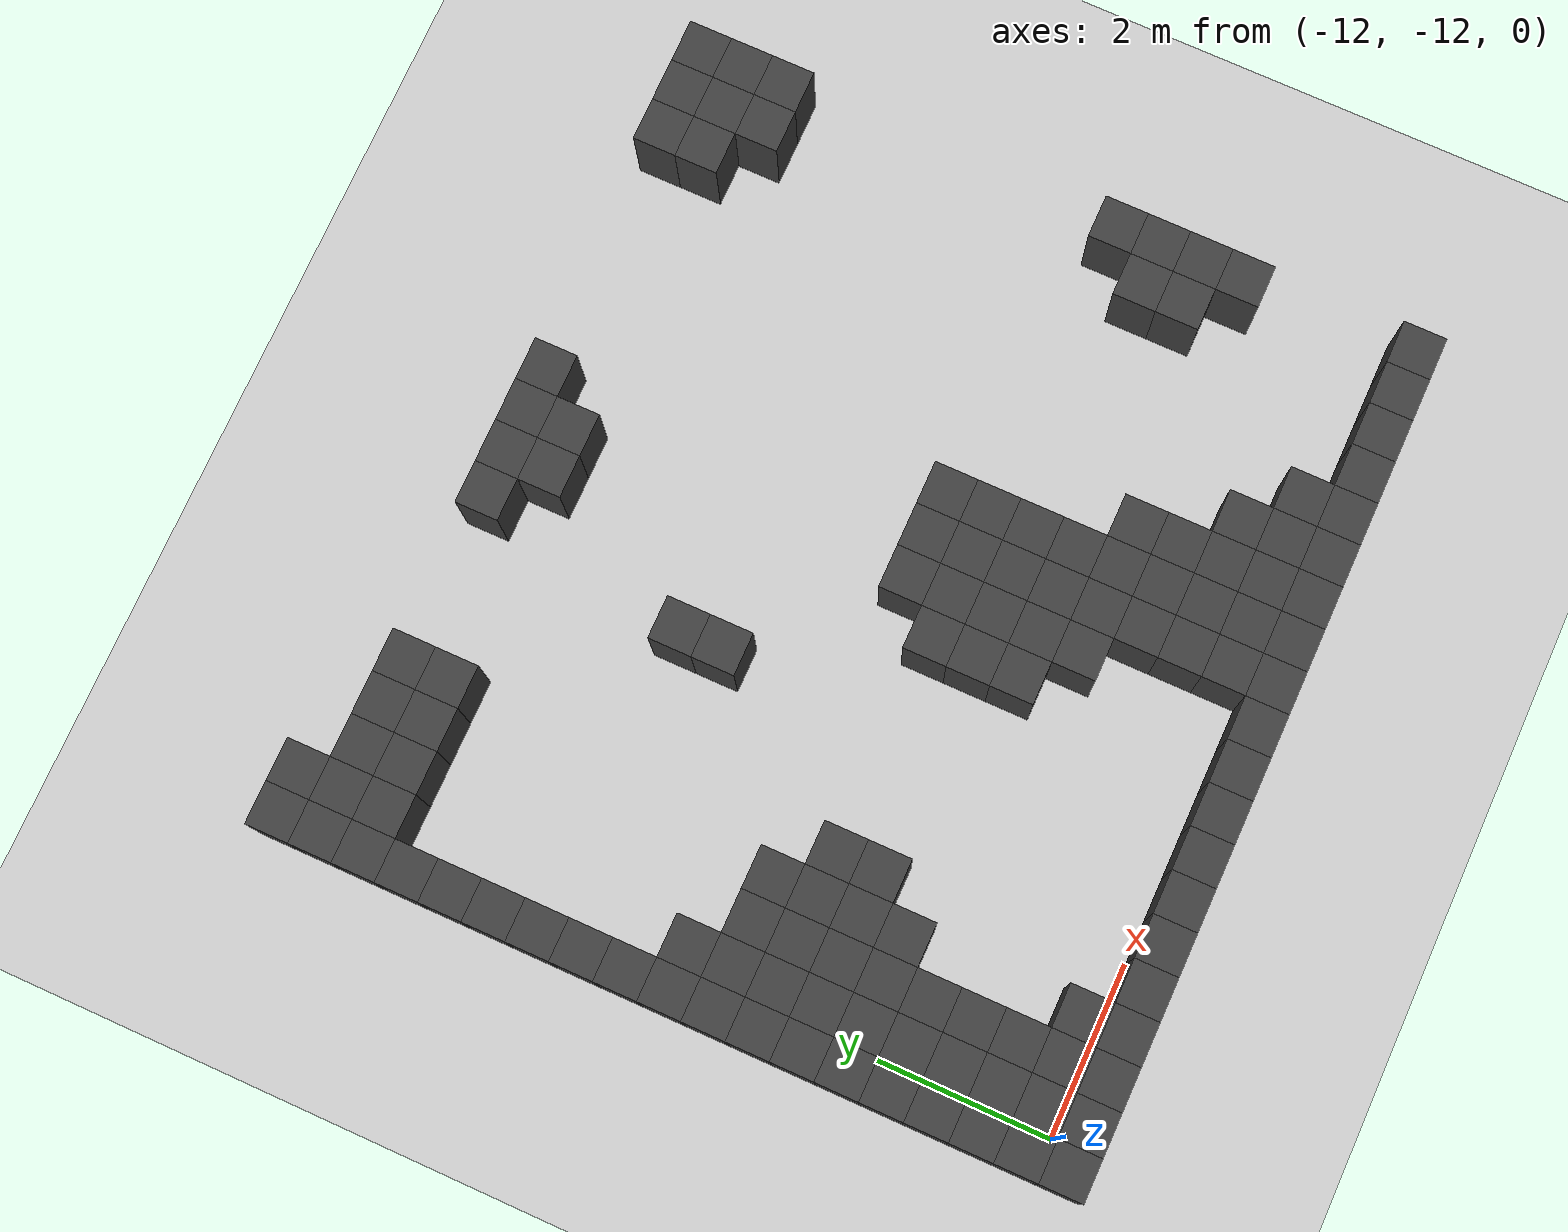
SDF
<sdf version="1.7">
 <world name="map_8382">
  <model name="ground_plane">
   <static>true</static>
   <link name="link">
    <collision name="collision">
     <geometry><plane><normal>0 0 1</normal><size>200 200</size></plane></geometry>
    </collision>
    <visual name="visual">
     <geometry><plane><normal>0 0 1</normal><size>200 200</size></plane></geometry>
     <material><ambient>0.8 0.8 0.8 1</ambient><diffuse>0.8 0.8 0.8 1</diffuse></material>
    </visual>
   </link>
  </model>
  <model name="maze_environment">
   <static>true</static>
   <link name="wall_510">
    <pose>-12.250 -3.250 0.500 0 0 0</pose>
    <collision name="col"><geometry><box><size>0.5 0.5 1.0</size></box></geometry></collision>
    <visual name="vis">
     <geometry><box><size>0.5 0.5 1.0</size></box></geometry>
     <material><ambient>0.15 0.15 0.15 1</ambient><diffuse>0.25 0.25 0.25 1</diffuse></material>
    </visual>
   </link>
   <link name="wall_511">
    <pose>-11.750 -3.250 0.500 0 0 0</pose>
    <collision name="col"><geometry><box><size>0.5 0.5 1.0</size></box></geometry></collision>
    <visual name="vis">
     <geometry><box><size>0.5 0.5 1.0</size></box></geometry>
     <material><ambient>0.15 0.15 0.15 1</ambient><diffuse>0.25 0.25 0.25 1</diffuse></material>
    </visual>
   </link>
   <link name="wall_533">
    <pose>-12.250 -3.750 0.500 0 0 0</pose>
    <collision name="col"><geometry><box><size>0.5 0.5 1.0</size></box></geometry></collision>
    <visual name="vis">
     <geometry><box><size>0.5 0.5 1.0</size></box></geometry>
     <material><ambient>0.15 0.15 0.15 1</ambient><diffuse>0.25 0.25 0.25 1</diffuse></material>
    </visual>
   </link>
   <link name="wall_534">
    <pose>-11.750 -3.750 0.500 0 0 0</pose>
    <collision name="col"><geometry><box><size>0.5 0.5 1.0</size></box></geometry></collision>
    <visual name="vis">
     <geometry><box><size>0.5 0.5 1.0</size></box></geometry>
     <material><ambient>0.15 0.15 0.15 1</ambient><diffuse>0.25 0.25 0.25 1</diffuse></material>
    </visual>
   </link>
   <link name="wall_535">
    <pose>-11.250 -3.750 0.500 0 0 0</pose>
    <collision name="col"><geometry><box><size>0.5 0.5 1.0</size></box></geometry></collision>
    <visual name="vis">
     <geometry><box><size>0.5 0.5 1.0</size></box></geometry>
     <material><ambient>0.15 0.15 0.15 1</ambient><diffuse>0.25 0.25 0.25 1</diffuse></material>
    </visual>
   </link>
   <link name="wall_536">
    <pose>-10.750 -3.750 0.500 0 0 0</pose>
    <collision name="col"><geometry><box><size>0.5 0.5 1.0</size></box></geometry></collision>
    <visual name="vis">
     <geometry><box><size>0.5 0.5 1.0</size></box></geometry>
     <material><ambient>0.15 0.15 0.15 1</ambient><diffuse>0.25 0.25 0.25 1</diffuse></material>
    </visual>
   </link>
   <link name="wall_537">
    <pose>-10.250 -3.750 0.500 0 0 0</pose>
    <collision name="col"><geometry><box><size>0.5 0.5 1.0</size></box></geometry></collision>
    <visual name="vis">
     <geometry><box><size>0.5 0.5 1.0</size></box></geometry>
     <material><ambient>0.15 0.15 0.15 1</ambient><diffuse>0.25 0.25 0.25 1</diffuse></material>
    </visual>
   </link>
   <link name="wall_538">
    <pose>-8.250 -3.750 0.500 0 0 0</pose>
    <collision name="col"><geometry><box><size>0.5 0.5 1.0</size></box></geometry></collision>
    <visual name="vis">
     <geometry><box><size>0.5 0.5 1.0</size></box></geometry>
     <material><ambient>0.15 0.15 0.15 1</ambient><diffuse>0.25 0.25 0.25 1</diffuse></material>
    </visual>
   </link>
   <link name="wall_539">
    <pose>-7.750 -3.750 0.500 0 0 0</pose>
    <collision name="col"><geometry><box><size>0.5 0.5 1.0</size></box></geometry></collision>
    <visual name="vis">
     <geometry><box><size>0.5 0.5 1.0</size></box></geometry>
     <material><ambient>0.15 0.15 0.15 1</ambient><diffuse>0.25 0.25 0.25 1</diffuse></material>
    </visual>
   </link>
   <link name="wall_540">
    <pose>-7.250 -3.750 0.500 0 0 0</pose>
    <collision name="col"><geometry><box><size>0.5 0.5 1.0</size></box></geometry></collision>
    <visual name="vis">
     <geometry><box><size>0.5 0.5 1.0</size></box></geometry>
     <material><ambient>0.15 0.15 0.15 1</ambient><diffuse>0.25 0.25 0.25 1</diffuse></material>
    </visual>
   </link>
   <link name="wall_541">
    <pose>-6.750 -3.750 0.500 0 0 0</pose>
    <collision name="col"><geometry><box><size>0.5 0.5 1.0</size></box></geometry></collision>
    <visual name="vis">
     <geometry><box><size>0.5 0.5 1.0</size></box></geometry>
     <material><ambient>0.15 0.15 0.15 1</ambient><diffuse>0.25 0.25 0.25 1</diffuse></material>
    </visual>
   </link>
   <link name="wall_542">
    <pose>-3.750 -3.750 0.500 0 0 0</pose>
    <collision name="col"><geometry><box><size>0.5 0.5 1.0</size></box></geometry></collision>
    <visual name="vis">
     <geometry><box><size>0.5 0.5 1.0</size></box></geometry>
     <material><ambient>0.15 0.15 0.15 1</ambient><diffuse>0.25 0.25 0.25 1</diffuse></material>
    </visual>
   </link>
   <link name="wall_543">
    <pose>-3.250 -3.750 0.500 0 0 0</pose>
    <collision name="col"><geometry><box><size>0.5 0.5 1.0</size></box></geometry></collision>
    <visual name="vis">
     <geometry><box><size>0.5 0.5 1.0</size></box></geometry>
     <material><ambient>0.15 0.15 0.15 1</ambient><diffuse>0.25 0.25 0.25 1</diffuse></material>
    </visual>
   </link>
   <link name="wall_544">
    <pose>-2.750 -3.750 0.500 0 0 0</pose>
    <collision name="col"><geometry><box><size>0.5 0.5 1.0</size></box></geometry></collision>
    <visual name="vis">
     <geometry><box><size>0.5 0.5 1.0</size></box></geometry>
     <material><ambient>0.15 0.15 0.15 1</ambient><diffuse>0.25 0.25 0.25 1</diffuse></material>
    </visual>
   </link>
   <link name="wall_560">
    <pose>-12.250 -4.250 0.500 0 0 0</pose>
    <collision name="col"><geometry><box><size>0.5 0.5 1.0</size></box></geometry></collision>
    <visual name="vis">
     <geometry><box><size>0.5 0.5 1.0</size></box></geometry>
     <material><ambient>0.15 0.15 0.15 1</ambient><diffuse>0.25 0.25 0.25 1</diffuse></material>
    </visual>
   </link>
   <link name="wall_561">
    <pose>-11.750 -4.250 0.500 0 0 0</pose>
    <collision name="col"><geometry><box><size>0.5 0.5 1.0</size></box></geometry></collision>
    <visual name="vis">
     <geometry><box><size>0.5 0.5 1.0</size></box></geometry>
     <material><ambient>0.15 0.15 0.15 1</ambient><diffuse>0.25 0.25 0.25 1</diffuse></material>
    </visual>
   </link>
   <link name="wall_562">
    <pose>-11.250 -4.250 0.500 0 0 0</pose>
    <collision name="col"><geometry><box><size>0.5 0.5 1.0</size></box></geometry></collision>
    <visual name="vis">
     <geometry><box><size>0.5 0.5 1.0</size></box></geometry>
     <material><ambient>0.15 0.15 0.15 1</ambient><diffuse>0.25 0.25 0.25 1</diffuse></material>
    </visual>
   </link>
   <link name="wall_563">
    <pose>-10.750 -4.250 0.500 0 0 0</pose>
    <collision name="col"><geometry><box><size>0.5 0.5 1.0</size></box></geometry></collision>
    <visual name="vis">
     <geometry><box><size>0.5 0.5 1.0</size></box></geometry>
     <material><ambient>0.15 0.15 0.15 1</ambient><diffuse>0.25 0.25 0.25 1</diffuse></material>
    </visual>
   </link>
   <link name="wall_564">
    <pose>-10.250 -4.250 0.500 0 0 0</pose>
    <collision name="col"><geometry><box><size>0.5 0.5 1.0</size></box></geometry></collision>
    <visual name="vis">
     <geometry><box><size>0.5 0.5 1.0</size></box></geometry>
     <material><ambient>0.15 0.15 0.15 1</ambient><diffuse>0.25 0.25 0.25 1</diffuse></material>
    </visual>
   </link>
   <link name="wall_565">
    <pose>-7.750 -4.250 0.500 0 0 0</pose>
    <collision name="col"><geometry><box><size>0.5 0.5 1.0</size></box></geometry></collision>
    <visual name="vis">
     <geometry><box><size>0.5 0.5 1.0</size></box></geometry>
     <material><ambient>0.15 0.15 0.15 1</ambient><diffuse>0.25 0.25 0.25 1</diffuse></material>
    </visual>
   </link>
   <link name="wall_566">
    <pose>-7.250 -4.250 0.500 0 0 0</pose>
    <collision name="col"><geometry><box><size>0.5 0.5 1.0</size></box></geometry></collision>
    <visual name="vis">
     <geometry><box><size>0.5 0.5 1.0</size></box></geometry>
     <material><ambient>0.15 0.15 0.15 1</ambient><diffuse>0.25 0.25 0.25 1</diffuse></material>
    </visual>
   </link>
   <link name="wall_567">
    <pose>-3.750 -4.250 0.500 0 0 0</pose>
    <collision name="col"><geometry><box><size>0.5 0.5 1.0</size></box></geometry></collision>
    <visual name="vis">
     <geometry><box><size>0.5 0.5 1.0</size></box></geometry>
     <material><ambient>0.15 0.15 0.15 1</ambient><diffuse>0.25 0.25 0.25 1</diffuse></material>
    </visual>
   </link>
   <link name="wall_568">
    <pose>-3.250 -4.250 0.500 0 0 0</pose>
    <collision name="col"><geometry><box><size>0.5 0.5 1.0</size></box></geometry></collision>
    <visual name="vis">
     <geometry><box><size>0.5 0.5 1.0</size></box></geometry>
     <material><ambient>0.15 0.15 0.15 1</ambient><diffuse>0.25 0.25 0.25 1</diffuse></material>
    </visual>
   </link>
   <link name="wall_569">
    <pose>-2.750 -4.250 0.500 0 0 0</pose>
    <collision name="col"><geometry><box><size>0.5 0.5 1.0</size></box></geometry></collision>
    <visual name="vis">
     <geometry><box><size>0.5 0.5 1.0</size></box></geometry>
     <material><ambient>0.15 0.15 0.15 1</ambient><diffuse>0.25 0.25 0.25 1</diffuse></material>
    </visual>
   </link>
   <link name="wall_587">
    <pose>-12.250 -4.750 0.500 0 0 0</pose>
    <collision name="col"><geometry><box><size>0.5 0.5 1.0</size></box></geometry></collision>
    <visual name="vis">
     <geometry><box><size>0.5 0.5 1.0</size></box></geometry>
     <material><ambient>0.15 0.15 0.15 1</ambient><diffuse>0.25 0.25 0.25 1</diffuse></material>
    </visual>
   </link>
   <link name="wall_588">
    <pose>-3.250 -4.750 0.500 0 0 0</pose>
    <collision name="col"><geometry><box><size>0.5 0.5 1.0</size></box></geometry></collision>
    <visual name="vis">
     <geometry><box><size>0.5 0.5 1.0</size></box></geometry>
     <material><ambient>0.15 0.15 0.15 1</ambient><diffuse>0.25 0.25 0.25 1</diffuse></material>
    </visual>
   </link>
   <link name="wall_589">
    <pose>-2.750 -4.750 0.500 0 0 0</pose>
    <collision name="col"><geometry><box><size>0.5 0.5 1.0</size></box></geometry></collision>
    <visual name="vis">
     <geometry><box><size>0.5 0.5 1.0</size></box></geometry>
     <material><ambient>0.15 0.15 0.15 1</ambient><diffuse>0.25 0.25 0.25 1</diffuse></material>
    </visual>
   </link>
   <link name="wall_608">
    <pose>-12.250 -5.250 0.500 0 0 0</pose>
    <collision name="col"><geometry><box><size>0.5 0.5 1.0</size></box></geometry></collision>
    <visual name="vis">
     <geometry><box><size>0.5 0.5 1.0</size></box></geometry>
     <material><ambient>0.15 0.15 0.15 1</ambient><diffuse>0.25 0.25 0.25 1</diffuse></material>
    </visual>
   </link>
   <link name="wall_623">
    <pose>-12.250 -5.750 0.500 0 0 0</pose>
    <collision name="col"><geometry><box><size>0.5 0.5 1.0</size></box></geometry></collision>
    <visual name="vis">
     <geometry><box><size>0.5 0.5 1.0</size></box></geometry>
     <material><ambient>0.15 0.15 0.15 1</ambient><diffuse>0.25 0.25 0.25 1</diffuse></material>
    </visual>
   </link>
   <link name="wall_634">
    <pose>-12.250 -6.250 0.500 0 0 0</pose>
    <collision name="col"><geometry><box><size>0.5 0.5 1.0</size></box></geometry></collision>
    <visual name="vis">
     <geometry><box><size>0.5 0.5 1.0</size></box></geometry>
     <material><ambient>0.15 0.15 0.15 1</ambient><diffuse>0.25 0.25 0.25 1</diffuse></material>
    </visual>
   </link>
   <link name="wall_635">
    <pose>-8.750 -6.250 0.500 0 0 0</pose>
    <collision name="col"><geometry><box><size>0.5 0.5 1.0</size></box></geometry></collision>
    <visual name="vis">
     <geometry><box><size>0.5 0.5 1.0</size></box></geometry>
     <material><ambient>0.15 0.15 0.15 1</ambient><diffuse>0.25 0.25 0.25 1</diffuse></material>
    </visual>
   </link>
   <link name="wall_645">
    <pose>-12.250 -6.750 0.500 0 0 0</pose>
    <collision name="col"><geometry><box><size>0.5 0.5 1.0</size></box></geometry></collision>
    <visual name="vis">
     <geometry><box><size>0.5 0.5 1.0</size></box></geometry>
     <material><ambient>0.15 0.15 0.15 1</ambient><diffuse>0.25 0.25 0.25 1</diffuse></material>
    </visual>
   </link>
   <link name="wall_646">
    <pose>-8.750 -6.750 0.500 0 0 0</pose>
    <collision name="col"><geometry><box><size>0.5 0.5 1.0</size></box></geometry></collision>
    <visual name="vis">
     <geometry><box><size>0.5 0.5 1.0</size></box></geometry>
     <material><ambient>0.15 0.15 0.15 1</ambient><diffuse>0.25 0.25 0.25 1</diffuse></material>
    </visual>
   </link>
   <link name="wall_654">
    <pose>-12.250 -7.250 0.500 0 0 0</pose>
    <collision name="col"><geometry><box><size>0.5 0.5 1.0</size></box></geometry></collision>
    <visual name="vis">
     <geometry><box><size>0.5 0.5 1.0</size></box></geometry>
     <material><ambient>0.15 0.15 0.15 1</ambient><diffuse>0.25 0.25 0.25 1</diffuse></material>
    </visual>
   </link>
   <link name="wall_660">
    <pose>-12.250 -7.750 0.500 0 0 0</pose>
    <collision name="col"><geometry><box><size>0.5 0.5 1.0</size></box></geometry></collision>
    <visual name="vis">
     <geometry><box><size>0.5 0.5 1.0</size></box></geometry>
     <material><ambient>0.15 0.15 0.15 1</ambient><diffuse>0.25 0.25 0.25 1</diffuse></material>
    </visual>
   </link>
   <link name="wall_661">
    <pose>-11.750 -7.750 0.500 0 0 0</pose>
    <collision name="col"><geometry><box><size>0.5 0.5 1.0</size></box></geometry></collision>
    <visual name="vis">
     <geometry><box><size>0.5 0.5 1.0</size></box></geometry>
     <material><ambient>0.15 0.15 0.15 1</ambient><diffuse>0.25 0.25 0.25 1</diffuse></material>
    </visual>
   </link>
   <link name="wall_668">
    <pose>-12.250 -8.250 0.500 0 0 0</pose>
    <collision name="col"><geometry><box><size>0.5 0.5 1.0</size></box></geometry></collision>
    <visual name="vis">
     <geometry><box><size>0.5 0.5 1.0</size></box></geometry>
     <material><ambient>0.15 0.15 0.15 1</ambient><diffuse>0.25 0.25 0.25 1</diffuse></material>
    </visual>
   </link>
   <link name="wall_669">
    <pose>-11.750 -8.250 0.500 0 0 0</pose>
    <collision name="col"><geometry><box><size>0.5 0.5 1.0</size></box></geometry></collision>
    <visual name="vis">
     <geometry><box><size>0.5 0.5 1.0</size></box></geometry>
     <material><ambient>0.15 0.15 0.15 1</ambient><diffuse>0.25 0.25 0.25 1</diffuse></material>
    </visual>
   </link>
   <link name="wall_670">
    <pose>-11.250 -8.250 0.500 0 0 0</pose>
    <collision name="col"><geometry><box><size>0.5 0.5 1.0</size></box></geometry></collision>
    <visual name="vis">
     <geometry><box><size>0.5 0.5 1.0</size></box></geometry>
     <material><ambient>0.15 0.15 0.15 1</ambient><diffuse>0.25 0.25 0.25 1</diffuse></material>
    </visual>
   </link>
   <link name="wall_671">
    <pose>-10.750 -8.250 0.500 0 0 0</pose>
    <collision name="col"><geometry><box><size>0.5 0.5 1.0</size></box></geometry></collision>
    <visual name="vis">
     <geometry><box><size>0.5 0.5 1.0</size></box></geometry>
     <material><ambient>0.15 0.15 0.15 1</ambient><diffuse>0.25 0.25 0.25 1</diffuse></material>
    </visual>
   </link>
   <link name="wall_672">
    <pose>-7.250 -8.250 0.500 0 0 0</pose>
    <collision name="col"><geometry><box><size>0.5 0.5 1.0</size></box></geometry></collision>
    <visual name="vis">
     <geometry><box><size>0.5 0.5 1.0</size></box></geometry>
     <material><ambient>0.15 0.15 0.15 1</ambient><diffuse>0.25 0.25 0.25 1</diffuse></material>
    </visual>
   </link>
   <link name="wall_673">
    <pose>-6.750 -8.250 0.500 0 0 0</pose>
    <collision name="col"><geometry><box><size>0.5 0.5 1.0</size></box></geometry></collision>
    <visual name="vis">
     <geometry><box><size>0.5 0.5 1.0</size></box></geometry>
     <material><ambient>0.15 0.15 0.15 1</ambient><diffuse>0.25 0.25 0.25 1</diffuse></material>
    </visual>
   </link>
   <link name="wall_674">
    <pose>-6.250 -8.250 0.500 0 0 0</pose>
    <collision name="col"><geometry><box><size>0.5 0.5 1.0</size></box></geometry></collision>
    <visual name="vis">
     <geometry><box><size>0.5 0.5 1.0</size></box></geometry>
     <material><ambient>0.15 0.15 0.15 1</ambient><diffuse>0.25 0.25 0.25 1</diffuse></material>
    </visual>
   </link>
   <link name="wall_681">
    <pose>-12.250 -8.750 0.500 0 0 0</pose>
    <collision name="col"><geometry><box><size>0.5 0.5 1.0</size></box></geometry></collision>
    <visual name="vis">
     <geometry><box><size>0.5 0.5 1.0</size></box></geometry>
     <material><ambient>0.15 0.15 0.15 1</ambient><diffuse>0.25 0.25 0.25 1</diffuse></material>
    </visual>
   </link>
   <link name="wall_682">
    <pose>-11.750 -8.750 0.500 0 0 0</pose>
    <collision name="col"><geometry><box><size>0.5 0.5 1.0</size></box></geometry></collision>
    <visual name="vis">
     <geometry><box><size>0.5 0.5 1.0</size></box></geometry>
     <material><ambient>0.15 0.15 0.15 1</ambient><diffuse>0.25 0.25 0.25 1</diffuse></material>
    </visual>
   </link>
   <link name="wall_683">
    <pose>-11.250 -8.750 0.500 0 0 0</pose>
    <collision name="col"><geometry><box><size>0.5 0.5 1.0</size></box></geometry></collision>
    <visual name="vis">
     <geometry><box><size>0.5 0.5 1.0</size></box></geometry>
     <material><ambient>0.15 0.15 0.15 1</ambient><diffuse>0.25 0.25 0.25 1</diffuse></material>
    </visual>
   </link>
   <link name="wall_684">
    <pose>-10.750 -8.750 0.500 0 0 0</pose>
    <collision name="col"><geometry><box><size>0.5 0.5 1.0</size></box></geometry></collision>
    <visual name="vis">
     <geometry><box><size>0.5 0.5 1.0</size></box></geometry>
     <material><ambient>0.15 0.15 0.15 1</ambient><diffuse>0.25 0.25 0.25 1</diffuse></material>
    </visual>
   </link>
   <link name="wall_685">
    <pose>-10.250 -8.750 0.500 0 0 0</pose>
    <collision name="col"><geometry><box><size>0.5 0.5 1.0</size></box></geometry></collision>
    <visual name="vis">
     <geometry><box><size>0.5 0.5 1.0</size></box></geometry>
     <material><ambient>0.15 0.15 0.15 1</ambient><diffuse>0.25 0.25 0.25 1</diffuse></material>
    </visual>
   </link>
   <link name="wall_686">
    <pose>-7.750 -8.750 0.500 0 0 0</pose>
    <collision name="col"><geometry><box><size>0.5 0.5 1.0</size></box></geometry></collision>
    <visual name="vis">
     <geometry><box><size>0.5 0.5 1.0</size></box></geometry>
     <material><ambient>0.15 0.15 0.15 1</ambient><diffuse>0.25 0.25 0.25 1</diffuse></material>
    </visual>
   </link>
   <link name="wall_687">
    <pose>-7.250 -8.750 0.500 0 0 0</pose>
    <collision name="col"><geometry><box><size>0.5 0.5 1.0</size></box></geometry></collision>
    <visual name="vis">
     <geometry><box><size>0.5 0.5 1.0</size></box></geometry>
     <material><ambient>0.15 0.15 0.15 1</ambient><diffuse>0.25 0.25 0.25 1</diffuse></material>
    </visual>
   </link>
   <link name="wall_688">
    <pose>-6.750 -8.750 0.500 0 0 0</pose>
    <collision name="col"><geometry><box><size>0.5 0.5 1.0</size></box></geometry></collision>
    <visual name="vis">
     <geometry><box><size>0.5 0.5 1.0</size></box></geometry>
     <material><ambient>0.15 0.15 0.15 1</ambient><diffuse>0.25 0.25 0.25 1</diffuse></material>
    </visual>
   </link>
   <link name="wall_689">
    <pose>-6.250 -8.750 0.500 0 0 0</pose>
    <collision name="col"><geometry><box><size>0.5 0.5 1.0</size></box></geometry></collision>
    <visual name="vis">
     <geometry><box><size>0.5 0.5 1.0</size></box></geometry>
     <material><ambient>0.15 0.15 0.15 1</ambient><diffuse>0.25 0.25 0.25 1</diffuse></material>
    </visual>
   </link>
   <link name="wall_690">
    <pose>-2.750 -8.750 0.500 0 0 0</pose>
    <collision name="col"><geometry><box><size>0.5 0.5 1.0</size></box></geometry></collision>
    <visual name="vis">
     <geometry><box><size>0.5 0.5 1.0</size></box></geometry>
     <material><ambient>0.15 0.15 0.15 1</ambient><diffuse>0.25 0.25 0.25 1</diffuse></material>
    </visual>
   </link>
   <link name="wall_697">
    <pose>-12.250 -9.250 0.500 0 0 0</pose>
    <collision name="col"><geometry><box><size>0.5 0.5 1.0</size></box></geometry></collision>
    <visual name="vis">
     <geometry><box><size>0.5 0.5 1.0</size></box></geometry>
     <material><ambient>0.15 0.15 0.15 1</ambient><diffuse>0.25 0.25 0.25 1</diffuse></material>
    </visual>
   </link>
   <link name="wall_698">
    <pose>-11.750 -9.250 0.500 0 0 0</pose>
    <collision name="col"><geometry><box><size>0.5 0.5 1.0</size></box></geometry></collision>
    <visual name="vis">
     <geometry><box><size>0.5 0.5 1.0</size></box></geometry>
     <material><ambient>0.15 0.15 0.15 1</ambient><diffuse>0.25 0.25 0.25 1</diffuse></material>
    </visual>
   </link>
   <link name="wall_699">
    <pose>-11.250 -9.250 0.500 0 0 0</pose>
    <collision name="col"><geometry><box><size>0.5 0.5 1.0</size></box></geometry></collision>
    <visual name="vis">
     <geometry><box><size>0.5 0.5 1.0</size></box></geometry>
     <material><ambient>0.15 0.15 0.15 1</ambient><diffuse>0.25 0.25 0.25 1</diffuse></material>
    </visual>
   </link>
   <link name="wall_700">
    <pose>-10.750 -9.250 0.500 0 0 0</pose>
    <collision name="col"><geometry><box><size>0.5 0.5 1.0</size></box></geometry></collision>
    <visual name="vis">
     <geometry><box><size>0.5 0.5 1.0</size></box></geometry>
     <material><ambient>0.15 0.15 0.15 1</ambient><diffuse>0.25 0.25 0.25 1</diffuse></material>
    </visual>
   </link>
   <link name="wall_701">
    <pose>-10.250 -9.250 0.500 0 0 0</pose>
    <collision name="col"><geometry><box><size>0.5 0.5 1.0</size></box></geometry></collision>
    <visual name="vis">
     <geometry><box><size>0.5 0.5 1.0</size></box></geometry>
     <material><ambient>0.15 0.15 0.15 1</ambient><diffuse>0.25 0.25 0.25 1</diffuse></material>
    </visual>
   </link>
   <link name="wall_702">
    <pose>-7.750 -9.250 0.500 0 0 0</pose>
    <collision name="col"><geometry><box><size>0.5 0.5 1.0</size></box></geometry></collision>
    <visual name="vis">
     <geometry><box><size>0.5 0.5 1.0</size></box></geometry>
     <material><ambient>0.15 0.15 0.15 1</ambient><diffuse>0.25 0.25 0.25 1</diffuse></material>
    </visual>
   </link>
   <link name="wall_703">
    <pose>-7.250 -9.250 0.500 0 0 0</pose>
    <collision name="col"><geometry><box><size>0.5 0.5 1.0</size></box></geometry></collision>
    <visual name="vis">
     <geometry><box><size>0.5 0.5 1.0</size></box></geometry>
     <material><ambient>0.15 0.15 0.15 1</ambient><diffuse>0.25 0.25 0.25 1</diffuse></material>
    </visual>
   </link>
   <link name="wall_704">
    <pose>-6.750 -9.250 0.500 0 0 0</pose>
    <collision name="col"><geometry><box><size>0.5 0.5 1.0</size></box></geometry></collision>
    <visual name="vis">
     <geometry><box><size>0.5 0.5 1.0</size></box></geometry>
     <material><ambient>0.15 0.15 0.15 1</ambient><diffuse>0.25 0.25 0.25 1</diffuse></material>
    </visual>
   </link>
   <link name="wall_705">
    <pose>-6.250 -9.250 0.500 0 0 0</pose>
    <collision name="col"><geometry><box><size>0.5 0.5 1.0</size></box></geometry></collision>
    <visual name="vis">
     <geometry><box><size>0.5 0.5 1.0</size></box></geometry>
     <material><ambient>0.15 0.15 0.15 1</ambient><diffuse>0.25 0.25 0.25 1</diffuse></material>
    </visual>
   </link>
   <link name="wall_706">
    <pose>-3.250 -9.250 0.500 0 0 0</pose>
    <collision name="col"><geometry><box><size>0.5 0.5 1.0</size></box></geometry></collision>
    <visual name="vis">
     <geometry><box><size>0.5 0.5 1.0</size></box></geometry>
     <material><ambient>0.15 0.15 0.15 1</ambient><diffuse>0.25 0.25 0.25 1</diffuse></material>
    </visual>
   </link>
   <link name="wall_707">
    <pose>-2.750 -9.250 0.500 0 0 0</pose>
    <collision name="col"><geometry><box><size>0.5 0.5 1.0</size></box></geometry></collision>
    <visual name="vis">
     <geometry><box><size>0.5 0.5 1.0</size></box></geometry>
     <material><ambient>0.15 0.15 0.15 1</ambient><diffuse>0.25 0.25 0.25 1</diffuse></material>
    </visual>
   </link>
   <link name="wall_715">
    <pose>-12.250 -9.750 0.500 0 0 0</pose>
    <collision name="col"><geometry><box><size>0.5 0.5 1.0</size></box></geometry></collision>
    <visual name="vis">
     <geometry><box><size>0.5 0.5 1.0</size></box></geometry>
     <material><ambient>0.15 0.15 0.15 1</ambient><diffuse>0.25 0.25 0.25 1</diffuse></material>
    </visual>
   </link>
   <link name="wall_716">
    <pose>-11.750 -9.750 0.500 0 0 0</pose>
    <collision name="col"><geometry><box><size>0.5 0.5 1.0</size></box></geometry></collision>
    <visual name="vis">
     <geometry><box><size>0.5 0.5 1.0</size></box></geometry>
     <material><ambient>0.15 0.15 0.15 1</ambient><diffuse>0.25 0.25 0.25 1</diffuse></material>
    </visual>
   </link>
   <link name="wall_717">
    <pose>-11.250 -9.750 0.500 0 0 0</pose>
    <collision name="col"><geometry><box><size>0.5 0.5 1.0</size></box></geometry></collision>
    <visual name="vis">
     <geometry><box><size>0.5 0.5 1.0</size></box></geometry>
     <material><ambient>0.15 0.15 0.15 1</ambient><diffuse>0.25 0.25 0.25 1</diffuse></material>
    </visual>
   </link>
   <link name="wall_718">
    <pose>-10.750 -9.750 0.500 0 0 0</pose>
    <collision name="col"><geometry><box><size>0.5 0.5 1.0</size></box></geometry></collision>
    <visual name="vis">
     <geometry><box><size>0.5 0.5 1.0</size></box></geometry>
     <material><ambient>0.15 0.15 0.15 1</ambient><diffuse>0.25 0.25 0.25 1</diffuse></material>
    </visual>
   </link>
   <link name="wall_719">
    <pose>-7.750 -9.750 0.500 0 0 0</pose>
    <collision name="col"><geometry><box><size>0.5 0.5 1.0</size></box></geometry></collision>
    <visual name="vis">
     <geometry><box><size>0.5 0.5 1.0</size></box></geometry>
     <material><ambient>0.15 0.15 0.15 1</ambient><diffuse>0.25 0.25 0.25 1</diffuse></material>
    </visual>
   </link>
   <link name="wall_720">
    <pose>-7.250 -9.750 0.500 0 0 0</pose>
    <collision name="col"><geometry><box><size>0.5 0.5 1.0</size></box></geometry></collision>
    <visual name="vis">
     <geometry><box><size>0.5 0.5 1.0</size></box></geometry>
     <material><ambient>0.15 0.15 0.15 1</ambient><diffuse>0.25 0.25 0.25 1</diffuse></material>
    </visual>
   </link>
   <link name="wall_721">
    <pose>-6.750 -9.750 0.500 0 0 0</pose>
    <collision name="col"><geometry><box><size>0.5 0.5 1.0</size></box></geometry></collision>
    <visual name="vis">
     <geometry><box><size>0.5 0.5 1.0</size></box></geometry>
     <material><ambient>0.15 0.15 0.15 1</ambient><diffuse>0.25 0.25 0.25 1</diffuse></material>
    </visual>
   </link>
   <link name="wall_722">
    <pose>-6.250 -9.750 0.500 0 0 0</pose>
    <collision name="col"><geometry><box><size>0.5 0.5 1.0</size></box></geometry></collision>
    <visual name="vis">
     <geometry><box><size>0.5 0.5 1.0</size></box></geometry>
     <material><ambient>0.15 0.15 0.15 1</ambient><diffuse>0.25 0.25 0.25 1</diffuse></material>
    </visual>
   </link>
   <link name="wall_723">
    <pose>-3.250 -9.750 0.500 0 0 0</pose>
    <collision name="col"><geometry><box><size>0.5 0.5 1.0</size></box></geometry></collision>
    <visual name="vis">
     <geometry><box><size>0.5 0.5 1.0</size></box></geometry>
     <material><ambient>0.15 0.15 0.15 1</ambient><diffuse>0.25 0.25 0.25 1</diffuse></material>
    </visual>
   </link>
   <link name="wall_724">
    <pose>-2.750 -9.750 0.500 0 0 0</pose>
    <collision name="col"><geometry><box><size>0.5 0.5 1.0</size></box></geometry></collision>
    <visual name="vis">
     <geometry><box><size>0.5 0.5 1.0</size></box></geometry>
     <material><ambient>0.15 0.15 0.15 1</ambient><diffuse>0.25 0.25 0.25 1</diffuse></material>
    </visual>
   </link>
   <link name="wall_733">
    <pose>-12.250 -10.250 0.500 0 0 0</pose>
    <collision name="col"><geometry><box><size>0.5 0.5 1.0</size></box></geometry></collision>
    <visual name="vis">
     <geometry><box><size>0.5 0.5 1.0</size></box></geometry>
     <material><ambient>0.15 0.15 0.15 1</ambient><diffuse>0.25 0.25 0.25 1</diffuse></material>
    </visual>
   </link>
   <link name="wall_734">
    <pose>-11.750 -10.250 0.500 0 0 0</pose>
    <collision name="col"><geometry><box><size>0.5 0.5 1.0</size></box></geometry></collision>
    <visual name="vis">
     <geometry><box><size>0.5 0.5 1.0</size></box></geometry>
     <material><ambient>0.15 0.15 0.15 1</ambient><diffuse>0.25 0.25 0.25 1</diffuse></material>
    </visual>
   </link>
   <link name="wall_735">
    <pose>-11.250 -10.250 0.500 0 0 0</pose>
    <collision name="col"><geometry><box><size>0.5 0.5 1.0</size></box></geometry></collision>
    <visual name="vis">
     <geometry><box><size>0.5 0.5 1.0</size></box></geometry>
     <material><ambient>0.15 0.15 0.15 1</ambient><diffuse>0.25 0.25 0.25 1</diffuse></material>
    </visual>
   </link>
   <link name="wall_736">
    <pose>-7.250 -10.250 0.500 0 0 0</pose>
    <collision name="col"><geometry><box><size>0.5 0.5 1.0</size></box></geometry></collision>
    <visual name="vis">
     <geometry><box><size>0.5 0.5 1.0</size></box></geometry>
     <material><ambient>0.15 0.15 0.15 1</ambient><diffuse>0.25 0.25 0.25 1</diffuse></material>
    </visual>
   </link>
   <link name="wall_737">
    <pose>-6.750 -10.250 0.500 0 0 0</pose>
    <collision name="col"><geometry><box><size>0.5 0.5 1.0</size></box></geometry></collision>
    <visual name="vis">
     <geometry><box><size>0.5 0.5 1.0</size></box></geometry>
     <material><ambient>0.15 0.15 0.15 1</ambient><diffuse>0.25 0.25 0.25 1</diffuse></material>
    </visual>
   </link>
   <link name="wall_738">
    <pose>-6.250 -10.250 0.500 0 0 0</pose>
    <collision name="col"><geometry><box><size>0.5 0.5 1.0</size></box></geometry></collision>
    <visual name="vis">
     <geometry><box><size>0.5 0.5 1.0</size></box></geometry>
     <material><ambient>0.15 0.15 0.15 1</ambient><diffuse>0.25 0.25 0.25 1</diffuse></material>
    </visual>
   </link>
   <link name="wall_739">
    <pose>-5.750 -10.250 0.500 0 0 0</pose>
    <collision name="col"><geometry><box><size>0.5 0.5 1.0</size></box></geometry></collision>
    <visual name="vis">
     <geometry><box><size>0.5 0.5 1.0</size></box></geometry>
     <material><ambient>0.15 0.15 0.15 1</ambient><diffuse>0.25 0.25 0.25 1</diffuse></material>
    </visual>
   </link>
   <link name="wall_740">
    <pose>-2.750 -10.250 0.500 0 0 0</pose>
    <collision name="col"><geometry><box><size>0.5 0.5 1.0</size></box></geometry></collision>
    <visual name="vis">
     <geometry><box><size>0.5 0.5 1.0</size></box></geometry>
     <material><ambient>0.15 0.15 0.15 1</ambient><diffuse>0.25 0.25 0.25 1</diffuse></material>
    </visual>
   </link>
   <link name="wall_750">
    <pose>-12.250 -10.750 0.500 0 0 0</pose>
    <collision name="col"><geometry><box><size>0.5 0.5 1.0</size></box></geometry></collision>
    <visual name="vis">
     <geometry><box><size>0.5 0.5 1.0</size></box></geometry>
     <material><ambient>0.15 0.15 0.15 1</ambient><diffuse>0.25 0.25 0.25 1</diffuse></material>
    </visual>
   </link>
   <link name="wall_751">
    <pose>-11.750 -10.750 0.500 0 0 0</pose>
    <collision name="col"><geometry><box><size>0.5 0.5 1.0</size></box></geometry></collision>
    <visual name="vis">
     <geometry><box><size>0.5 0.5 1.0</size></box></geometry>
     <material><ambient>0.15 0.15 0.15 1</ambient><diffuse>0.25 0.25 0.25 1</diffuse></material>
    </visual>
   </link>
   <link name="wall_752">
    <pose>-11.250 -10.750 0.500 0 0 0</pose>
    <collision name="col"><geometry><box><size>0.5 0.5 1.0</size></box></geometry></collision>
    <visual name="vis">
     <geometry><box><size>0.5 0.5 1.0</size></box></geometry>
     <material><ambient>0.15 0.15 0.15 1</ambient><diffuse>0.25 0.25 0.25 1</diffuse></material>
    </visual>
   </link>
   <link name="wall_753">
    <pose>-6.750 -10.750 0.500 0 0 0</pose>
    <collision name="col"><geometry><box><size>0.5 0.5 1.0</size></box></geometry></collision>
    <visual name="vis">
     <geometry><box><size>0.5 0.5 1.0</size></box></geometry>
     <material><ambient>0.15 0.15 0.15 1</ambient><diffuse>0.25 0.25 0.25 1</diffuse></material>
    </visual>
   </link>
   <link name="wall_754">
    <pose>-6.250 -10.750 0.500 0 0 0</pose>
    <collision name="col"><geometry><box><size>0.5 0.5 1.0</size></box></geometry></collision>
    <visual name="vis">
     <geometry><box><size>0.5 0.5 1.0</size></box></geometry>
     <material><ambient>0.15 0.15 0.15 1</ambient><diffuse>0.25 0.25 0.25 1</diffuse></material>
    </visual>
   </link>
   <link name="wall_755">
    <pose>-5.750 -10.750 0.500 0 0 0</pose>
    <collision name="col"><geometry><box><size>0.5 0.5 1.0</size></box></geometry></collision>
    <visual name="vis">
     <geometry><box><size>0.5 0.5 1.0</size></box></geometry>
     <material><ambient>0.15 0.15 0.15 1</ambient><diffuse>0.25 0.25 0.25 1</diffuse></material>
    </visual>
   </link>
   <link name="wall_766">
    <pose>-12.250 -11.250 0.500 0 0 0</pose>
    <collision name="col"><geometry><box><size>0.5 0.5 1.0</size></box></geometry></collision>
    <visual name="vis">
     <geometry><box><size>0.5 0.5 1.0</size></box></geometry>
     <material><ambient>0.15 0.15 0.15 1</ambient><diffuse>0.25 0.25 0.25 1</diffuse></material>
    </visual>
   </link>
   <link name="wall_767">
    <pose>-11.750 -11.250 0.500 0 0 0</pose>
    <collision name="col"><geometry><box><size>0.5 0.5 1.0</size></box></geometry></collision>
    <visual name="vis">
     <geometry><box><size>0.5 0.5 1.0</size></box></geometry>
     <material><ambient>0.15 0.15 0.15 1</ambient><diffuse>0.25 0.25 0.25 1</diffuse></material>
    </visual>
   </link>
   <link name="wall_768">
    <pose>-11.250 -11.250 0.500 0 0 0</pose>
    <collision name="col"><geometry><box><size>0.5 0.5 1.0</size></box></geometry></collision>
    <visual name="vis">
     <geometry><box><size>0.5 0.5 1.0</size></box></geometry>
     <material><ambient>0.15 0.15 0.15 1</ambient><diffuse>0.25 0.25 0.25 1</diffuse></material>
    </visual>
   </link>
   <link name="wall_769">
    <pose>-6.750 -11.250 0.500 0 0 0</pose>
    <collision name="col"><geometry><box><size>0.5 0.5 1.0</size></box></geometry></collision>
    <visual name="vis">
     <geometry><box><size>0.5 0.5 1.0</size></box></geometry>
     <material><ambient>0.15 0.15 0.15 1</ambient><diffuse>0.25 0.25 0.25 1</diffuse></material>
    </visual>
   </link>
   <link name="wall_770">
    <pose>-6.250 -11.250 0.500 0 0 0</pose>
    <collision name="col"><geometry><box><size>0.5 0.5 1.0</size></box></geometry></collision>
    <visual name="vis">
     <geometry><box><size>0.5 0.5 1.0</size></box></geometry>
     <material><ambient>0.15 0.15 0.15 1</ambient><diffuse>0.25 0.25 0.25 1</diffuse></material>
    </visual>
   </link>
   <link name="wall_771">
    <pose>-5.750 -11.250 0.500 0 0 0</pose>
    <collision name="col"><geometry><box><size>0.5 0.5 1.0</size></box></geometry></collision>
    <visual name="vis">
     <geometry><box><size>0.5 0.5 1.0</size></box></geometry>
     <material><ambient>0.15 0.15 0.15 1</ambient><diffuse>0.25 0.25 0.25 1</diffuse></material>
    </visual>
   </link>
   <link name="wall_772">
    <pose>-5.250 -11.250 0.500 0 0 0</pose>
    <collision name="col"><geometry><box><size>0.5 0.5 1.0</size></box></geometry></collision>
    <visual name="vis">
     <geometry><box><size>0.5 0.5 1.0</size></box></geometry>
     <material><ambient>0.15 0.15 0.15 1</ambient><diffuse>0.25 0.25 0.25 1</diffuse></material>
    </visual>
   </link>
   <link name="wall_787">
    <pose>-12.250 -11.750 0.500 0 0 0</pose>
    <collision name="col"><geometry><box><size>0.5 0.5 1.0</size></box></geometry></collision>
    <visual name="vis">
     <geometry><box><size>0.5 0.5 1.0</size></box></geometry>
     <material><ambient>0.15 0.15 0.15 1</ambient><diffuse>0.25 0.25 0.25 1</diffuse></material>
    </visual>
   </link>
   <link name="wall_788">
    <pose>-11.750 -11.750 0.500 0 0 0</pose>
    <collision name="col"><geometry><box><size>0.5 0.5 1.0</size></box></geometry></collision>
    <visual name="vis">
     <geometry><box><size>0.5 0.5 1.0</size></box></geometry>
     <material><ambient>0.15 0.15 0.15 1</ambient><diffuse>0.25 0.25 0.25 1</diffuse></material>
    </visual>
   </link>
   <link name="wall_789">
    <pose>-11.250 -11.750 0.500 0 0 0</pose>
    <collision name="col"><geometry><box><size>0.5 0.5 1.0</size></box></geometry></collision>
    <visual name="vis">
     <geometry><box><size>0.5 0.5 1.0</size></box></geometry>
     <material><ambient>0.15 0.15 0.15 1</ambient><diffuse>0.25 0.25 0.25 1</diffuse></material>
    </visual>
   </link>
   <link name="wall_790">
    <pose>-10.750 -11.750 0.500 0 0 0</pose>
    <collision name="col"><geometry><box><size>0.5 0.5 1.0</size></box></geometry></collision>
    <visual name="vis">
     <geometry><box><size>0.5 0.5 1.0</size></box></geometry>
     <material><ambient>0.15 0.15 0.15 1</ambient><diffuse>0.25 0.25 0.25 1</diffuse></material>
    </visual>
   </link>
   <link name="wall_791">
    <pose>-6.750 -11.750 0.500 0 0 0</pose>
    <collision name="col"><geometry><box><size>0.5 0.5 1.0</size></box></geometry></collision>
    <visual name="vis">
     <geometry><box><size>0.5 0.5 1.0</size></box></geometry>
     <material><ambient>0.15 0.15 0.15 1</ambient><diffuse>0.25 0.25 0.25 1</diffuse></material>
    </visual>
   </link>
   <link name="wall_792">
    <pose>-6.250 -11.750 0.500 0 0 0</pose>
    <collision name="col"><geometry><box><size>0.5 0.5 1.0</size></box></geometry></collision>
    <visual name="vis">
     <geometry><box><size>0.5 0.5 1.0</size></box></geometry>
     <material><ambient>0.15 0.15 0.15 1</ambient><diffuse>0.25 0.25 0.25 1</diffuse></material>
    </visual>
   </link>
   <link name="wall_793">
    <pose>-5.750 -11.750 0.500 0 0 0</pose>
    <collision name="col"><geometry><box><size>0.5 0.5 1.0</size></box></geometry></collision>
    <visual name="vis">
     <geometry><box><size>0.5 0.5 1.0</size></box></geometry>
     <material><ambient>0.15 0.15 0.15 1</ambient><diffuse>0.25 0.25 0.25 1</diffuse></material>
    </visual>
   </link>
   <link name="wall_794">
    <pose>-5.250 -11.750 0.500 0 0 0</pose>
    <collision name="col"><geometry><box><size>0.5 0.5 1.0</size></box></geometry></collision>
    <visual name="vis">
     <geometry><box><size>0.5 0.5 1.0</size></box></geometry>
     <material><ambient>0.15 0.15 0.15 1</ambient><diffuse>0.25 0.25 0.25 1</diffuse></material>
    </visual>
   </link>
   <link name="wall_795">
    <pose>-4.750 -11.750 0.500 0 0 0</pose>
    <collision name="col"><geometry><box><size>0.5 0.5 1.0</size></box></geometry></collision>
    <visual name="vis">
     <geometry><box><size>0.5 0.5 1.0</size></box></geometry>
     <material><ambient>0.15 0.15 0.15 1</ambient><diffuse>0.25 0.25 0.25 1</diffuse></material>
    </visual>
   </link>
   <link name="wall_816">
    <pose>-12.250 -12.250 0.500 0 0 0</pose>
    <collision name="col"><geometry><box><size>0.5 0.5 1.0</size></box></geometry></collision>
    <visual name="vis">
     <geometry><box><size>0.5 0.5 1.0</size></box></geometry>
     <material><ambient>0.15 0.15 0.15 1</ambient><diffuse>0.25 0.25 0.25 1</diffuse></material>
    </visual>
   </link>
   <link name="wall_817">
    <pose>-11.750 -12.250 0.500 0 0 0</pose>
    <collision name="col"><geometry><box><size>0.5 0.5 1.0</size></box></geometry></collision>
    <visual name="vis">
     <geometry><box><size>0.5 0.5 1.0</size></box></geometry>
     <material><ambient>0.15 0.15 0.15 1</ambient><diffuse>0.25 0.25 0.25 1</diffuse></material>
    </visual>
   </link>
   <link name="wall_818">
    <pose>-11.250 -12.250 0.500 0 0 0</pose>
    <collision name="col"><geometry><box><size>0.5 0.5 1.0</size></box></geometry></collision>
    <visual name="vis">
     <geometry><box><size>0.5 0.5 1.0</size></box></geometry>
     <material><ambient>0.15 0.15 0.15 1</ambient><diffuse>0.25 0.25 0.25 1</diffuse></material>
    </visual>
   </link>
   <link name="wall_819">
    <pose>-10.750 -12.250 0.500 0 0 0</pose>
    <collision name="col"><geometry><box><size>0.5 0.5 1.0</size></box></geometry></collision>
    <visual name="vis">
     <geometry><box><size>0.5 0.5 1.0</size></box></geometry>
     <material><ambient>0.15 0.15 0.15 1</ambient><diffuse>0.25 0.25 0.25 1</diffuse></material>
    </visual>
   </link>
   <link name="wall_820">
    <pose>-10.250 -12.250 0.500 0 0 0</pose>
    <collision name="col"><geometry><box><size>0.5 0.5 1.0</size></box></geometry></collision>
    <visual name="vis">
     <geometry><box><size>0.5 0.5 1.0</size></box></geometry>
     <material><ambient>0.15 0.15 0.15 1</ambient><diffuse>0.25 0.25 0.25 1</diffuse></material>
    </visual>
   </link>
   <link name="wall_821">
    <pose>-9.750 -12.250 0.500 0 0 0</pose>
    <collision name="col"><geometry><box><size>0.5 0.5 1.0</size></box></geometry></collision>
    <visual name="vis">
     <geometry><box><size>0.5 0.5 1.0</size></box></geometry>
     <material><ambient>0.15 0.15 0.15 1</ambient><diffuse>0.25 0.25 0.25 1</diffuse></material>
    </visual>
   </link>
   <link name="wall_822">
    <pose>-9.250 -12.250 0.500 0 0 0</pose>
    <collision name="col"><geometry><box><size>0.5 0.5 1.0</size></box></geometry></collision>
    <visual name="vis">
     <geometry><box><size>0.5 0.5 1.0</size></box></geometry>
     <material><ambient>0.15 0.15 0.15 1</ambient><diffuse>0.25 0.25 0.25 1</diffuse></material>
    </visual>
   </link>
   <link name="wall_823">
    <pose>-8.750 -12.250 0.500 0 0 0</pose>
    <collision name="col"><geometry><box><size>0.5 0.5 1.0</size></box></geometry></collision>
    <visual name="vis">
     <geometry><box><size>0.5 0.5 1.0</size></box></geometry>
     <material><ambient>0.15 0.15 0.15 1</ambient><diffuse>0.25 0.25 0.25 1</diffuse></material>
    </visual>
   </link>
   <link name="wall_824">
    <pose>-8.250 -12.250 0.500 0 0 0</pose>
    <collision name="col"><geometry><box><size>0.5 0.5 1.0</size></box></geometry></collision>
    <visual name="vis">
     <geometry><box><size>0.5 0.5 1.0</size></box></geometry>
     <material><ambient>0.15 0.15 0.15 1</ambient><diffuse>0.25 0.25 0.25 1</diffuse></material>
    </visual>
   </link>
   <link name="wall_825">
    <pose>-7.750 -12.250 0.500 0 0 0</pose>
    <collision name="col"><geometry><box><size>0.5 0.5 1.0</size></box></geometry></collision>
    <visual name="vis">
     <geometry><box><size>0.5 0.5 1.0</size></box></geometry>
     <material><ambient>0.15 0.15 0.15 1</ambient><diffuse>0.25 0.25 0.25 1</diffuse></material>
    </visual>
   </link>
   <link name="wall_826">
    <pose>-7.250 -12.250 0.500 0 0 0</pose>
    <collision name="col"><geometry><box><size>0.5 0.5 1.0</size></box></geometry></collision>
    <visual name="vis">
     <geometry><box><size>0.5 0.5 1.0</size></box></geometry>
     <material><ambient>0.15 0.15 0.15 1</ambient><diffuse>0.25 0.25 0.25 1</diffuse></material>
    </visual>
   </link>
   <link name="wall_827">
    <pose>-6.750 -12.250 0.500 0 0 0</pose>
    <collision name="col"><geometry><box><size>0.5 0.5 1.0</size></box></geometry></collision>
    <visual name="vis">
     <geometry><box><size>0.5 0.5 1.0</size></box></geometry>
     <material><ambient>0.15 0.15 0.15 1</ambient><diffuse>0.25 0.25 0.25 1</diffuse></material>
    </visual>
   </link>
   <link name="wall_828">
    <pose>-6.250 -12.250 0.500 0 0 0</pose>
    <collision name="col"><geometry><box><size>0.5 0.5 1.0</size></box></geometry></collision>
    <visual name="vis">
     <geometry><box><size>0.5 0.5 1.0</size></box></geometry>
     <material><ambient>0.15 0.15 0.15 1</ambient><diffuse>0.25 0.25 0.25 1</diffuse></material>
    </visual>
   </link>
   <link name="wall_829">
    <pose>-5.750 -12.250 0.500 0 0 0</pose>
    <collision name="col"><geometry><box><size>0.5 0.5 1.0</size></box></geometry></collision>
    <visual name="vis">
     <geometry><box><size>0.5 0.5 1.0</size></box></geometry>
     <material><ambient>0.15 0.15 0.15 1</ambient><diffuse>0.25 0.25 0.25 1</diffuse></material>
    </visual>
   </link>
   <link name="wall_830">
    <pose>-5.250 -12.250 0.500 0 0 0</pose>
    <collision name="col"><geometry><box><size>0.5 0.5 1.0</size></box></geometry></collision>
    <visual name="vis">
     <geometry><box><size>0.5 0.5 1.0</size></box></geometry>
     <material><ambient>0.15 0.15 0.15 1</ambient><diffuse>0.25 0.25 0.25 1</diffuse></material>
    </visual>
   </link>
   <link name="wall_831">
    <pose>-4.750 -12.250 0.500 0 0 0</pose>
    <collision name="col"><geometry><box><size>0.5 0.5 1.0</size></box></geometry></collision>
    <visual name="vis">
     <geometry><box><size>0.5 0.5 1.0</size></box></geometry>
     <material><ambient>0.15 0.15 0.15 1</ambient><diffuse>0.25 0.25 0.25 1</diffuse></material>
    </visual>
   </link>
   <link name="wall_832">
    <pose>-4.250 -12.250 0.500 0 0 0</pose>
    <collision name="col"><geometry><box><size>0.5 0.5 1.0</size></box></geometry></collision>
    <visual name="vis">
     <geometry><box><size>0.5 0.5 1.0</size></box></geometry>
     <material><ambient>0.15 0.15 0.15 1</ambient><diffuse>0.25 0.25 0.25 1</diffuse></material>
    </visual>
   </link>
   <link name="wall_833">
    <pose>-3.750 -12.250 0.500 0 0 0</pose>
    <collision name="col"><geometry><box><size>0.5 0.5 1.0</size></box></geometry></collision>
    <visual name="vis">
     <geometry><box><size>0.5 0.5 1.0</size></box></geometry>
     <material><ambient>0.15 0.15 0.15 1</ambient><diffuse>0.25 0.25 0.25 1</diffuse></material>
    </visual>
   </link>
   <link name="wall_834">
    <pose>-3.250 -12.250 0.500 0 0 0</pose>
    <collision name="col"><geometry><box><size>0.5 0.5 1.0</size></box></geometry></collision>
    <visual name="vis">
     <geometry><box><size>0.5 0.5 1.0</size></box></geometry>
     <material><ambient>0.15 0.15 0.15 1</ambient><diffuse>0.25 0.25 0.25 1</diffuse></material>
    </visual>
   </link>
   <link name="wall_835">
    <pose>-2.750 -12.250 0.500 0 0 0</pose>
    <collision name="col"><geometry><box><size>0.5 0.5 1.0</size></box></geometry></collision>
    <visual name="vis">
     <geometry><box><size>0.5 0.5 1.0</size></box></geometry>
     <material><ambient>0.15 0.15 0.15 1</ambient><diffuse>0.25 0.25 0.25 1</diffuse></material>
    </visual>
   </link>
  </model>
 </world>
</sdf>
